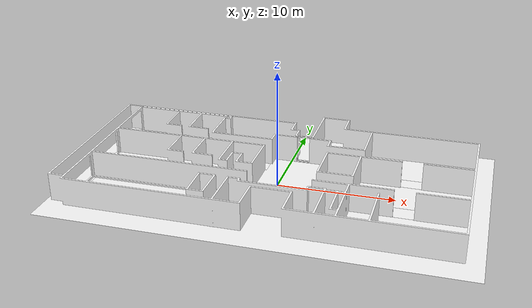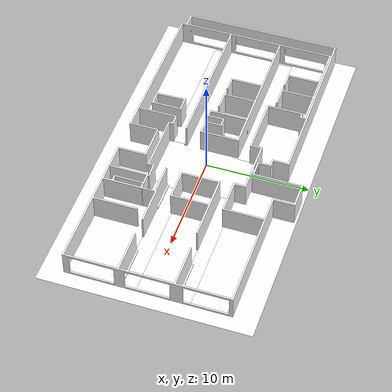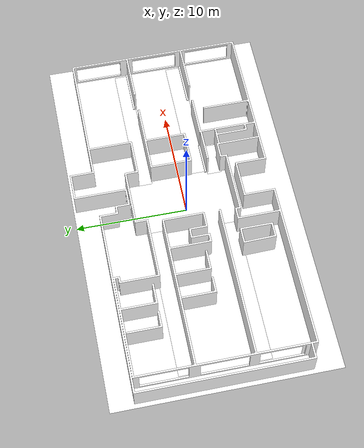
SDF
<?xml version='1.0' encoding='ASCII'?>
<sdf version='1.7'>
  <world name='office'>
    <physics name='1ms' type='ignored'>
      <max_step_size>0.01</max_step_size>
      <real_time_factor>1</real_time_factor>
    </physics>
    <plugin name='ignition::gazebo::systems::Physics' filename='libignition-gazebo-physics-system.so'/>
    <plugin name='ignition::gazebo::systems::UserCommands' filename='libignition-gazebo-user-commands-system.so'/>
    <plugin name='ignition::gazebo::systems::SceneBroadcaster' filename='libignition-gazebo-scene-broadcaster-system.so'/>
    <plugin name='ignition::gazebo::systems::Imu' filename='ignition-gazebo-imu-system'/>
    <plugin name='ignition::gazebo::systems::Sensors' filename='ignition-gazebo-sensors-system'>
      <render_engine>ogre2</render_engine>
    </plugin>
    <scene>
      <ambient>0.4 0.4 0.4 1</ambient>
      <background>0.7 0.7 0.7 1</background>
      <shadows>1</shadows>
    </scene>
    <light name='sun' type='directional'>
      <cast_shadows>1</cast_shadows>
      <pose>0 0 10 0 -0 0</pose>
      <diffuse>0.8 0.8 0.8 1</diffuse>
      <specular>0.2 0.2 0.2 1</specular>
      <attenuation>
        <range>1000</range>
        <constant>0.9</constant>
        <linear>0.01</linear>
        <quadratic>0.001</quadratic>
      </attenuation>
      <direction>-0.5 0.1 -0.9</direction>
      <spot>
        <inner_angle>0</inner_angle>
        <outer_angle>0</outer_angle>
        <falloff>0</falloff>
      </spot>
    </light>
    <model name='ground_plane'>
      <static>1</static>
      <link name='link'>
        <collision name='collision'>
          <geometry>
            <plane>
              <normal>0 0 1</normal>
              <size>100 100</size>
            </plane>
          </geometry>
          <surface>
            <contact>
              <collide_bitmask>65535</collide_bitmask>
              <ode/>
            </contact>
            <friction>
              <ode>
                <mu>100</mu>
                <mu2>50</mu2>
              </ode>
              <torsional>
                <ode/>
              </torsional>
            </friction>
            <bounce/>
          </surface>
          <max_contacts>10</max_contacts>
        </collision>
        <self_collide>0</self_collide>
        <enable_wind>0</enable_wind>
        <kinematic>0</kinematic>
      </link>
    </model>
    <include>
      <uri>
        model://office
      </uri>
    </include>
  </world>
</sdf>

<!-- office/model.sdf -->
<sdf version="1.6">
  <model name='office'>
    <static>1</static>
    <link name='walls'>
      <collision name='collision'>
        <geometry>
          <mesh>
            <scale>1 1 1</scale>
            <uri>meshes/walls.dae</uri>
          </mesh>
        </geometry>
        <surface>
          <friction>
            <ode/>
          </friction>
          <bounce/>
          <contact/>
        </surface>
      </collision>
      <visual name='visual'>
        <geometry>
          <mesh>
            <scale>1 1 1</scale>
            <uri>meshes/walls.dae</uri>
          </mesh>
        </geometry>
        <material>
          <diffuse>1 1 1 1</diffuse>
          <specular>0 0 0 0</specular>
          <pbr>
            <metal>
              <albedo_map>materials/textures/walls/macro_flour_diff_4k.jpg</albedo_map>
              <normal_map>materials/textures/walls/macro_flour_nor_gl_4k.exr</normal_map>
              <roughness_map>materials/textures/walls/macro_flour_rough_4k.exr</roughness_map>
              <metalness>0.</metalness>
            </metal>
          </pbr>
        </material>
      </visual>
    </link>
    <link name='wood_floor'>
      <visual name='visual'>
        <geometry>
          <mesh>
            <scale>1 1 1</scale>
            <uri>meshes/wood.dae</uri>
          </mesh>
        </geometry>
        <material>
          <diffuse>1 1 1 1</diffuse>
          <specular>1 1 1 1</specular>
          <pbr>
            <metal>
              <albedo_map>materials/textures/wood/wood_floor_diff_4k.jpg</albedo_map>
              <normal_map>materials/textures/wood/wood_floor_nor_gl_4k.exr</normal_map>
              <roughness_map>materials/textures/wood/wood_floor_rough_4k.exr</roughness_map>
              <metalness>0.</metalness>
            </metal>
          </pbr>
        </material>
      </visual>
    </link>
    <link name='tiles'>
      <visual name='visual'>
        <geometry>
          <mesh>
            <scale>1 1 1</scale>
            <uri>meshes/tiles.dae</uri>
          </mesh>
        </geometry>
        <material>
          <diffuse>1 1 1 1</diffuse>
          <specular>1 1 1 1</specular>
          <pbr>
            <metal>
              <albedo_map>materials/textures/tiles/Tiles054_1K-JPG_Color.jpg</albedo_map>
              <normal_map>materials/textures/tiles/Tiles054_1K-JPG_NormalDX.jpg</normal_map>
              <roughness_map>materials/textures/tiles/Tiles054_1K-JPG_Roughness.jpg</roughness_map>
              <metalness>0.</metalness>
            </metal>
          </pbr>
        </material>
      </visual>
    </link>

    <pose>0 0 0 0 0 0</pose>
  </model>
</sdf>
